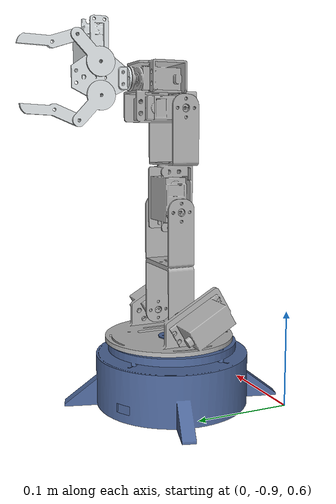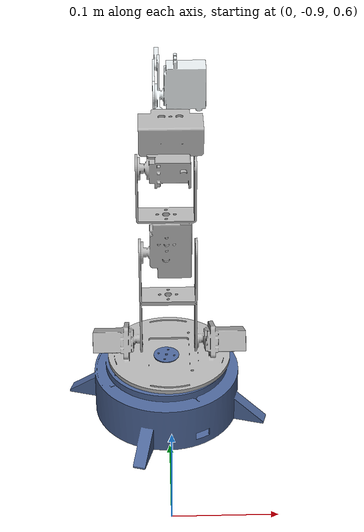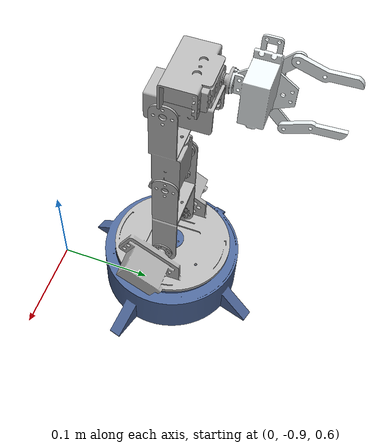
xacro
<?xml version="1.0" ?>
<!-- |    This document was autogenerated by xacro from /home/nsrie/working/all_ros_ws/camera_ws/src/my_arm_description/urdf/robot_arm.xacro | -->
<!-- |    EDITING THIS FILE BY HAND IS NOT RECOMMENDED                                 | -->

<robot name="fyp_robot" xmlns:xacro="http://www.ros.org/wiki/xacro">
    <xacro:property name="scale" value="0.001" />

    <material name="silver">
        <color rgba="0.7 0.7 0.7 1.0" />
    </material>
    <material name="blue">
        <color rgba="0.3 0.4 0.6 1.0" />
    </material>

    <xacro:include filename="$(find fyp_new_cfg)/urdf/fyp_robot.trans" />
    <xacro:include filename="$(find fyp_new_cfg)/urdf/fyp_robot.gazebo" />
    <xacro:include filename="$(find fyp_new_cfg)/urdf/fyp_robot.urdf" />

</robot>

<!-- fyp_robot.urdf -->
<!-- |    This document was autogenerated by xacro from /home/nsrie/working/all_ros_ws/camera_ws/src/my_arm_description/urdf/robot_arm.xacro | -->
<!-- |    EDITING THIS FILE BY HAND IS NOT RECOMMENDED                                 | -->
<robot name="fyp_robot">
   <link name="world" />
    <joint name="base_fixed_joint" type="fixed">
        <parent link="world" />
        <child link="base_link" />
        <origin rpy="0 0 0" xyz="0 -0.768 0.629" />
    </joint>

    <link name="base_link">
        <inertial>
            <origin rpy="0 0 0" xyz="-0.0019226671084236508 0.03127199959893212 0.003074002176362074" />
            <mass value="0.1" />
            <inertia ixx="0.0135" ixy="0.0" ixz="0.0" iyy="0.0135" iyz="0.0" izz="0.05" />
        </inertial>
        <visual>
            <origin rpy="1.57 0 0" xyz="0 0 0" />
            <geometry>
                <mesh filename="package://my_arm_description/meshes/base_link.stl" scale="${scale} ${scale} ${scale}" />
            </geometry>
            <material name="blue" />
        </visual>
        <collision>
            <origin rpy="1.57 0 0" xyz="0 0 0" />
            <geometry>
                <mesh filename="package://my_arm_description/meshes/base_link.stl" scale="${scale} ${scale} ${scale}" />
            </geometry>
        </collision>
    </link>
    <link name="Link1_1">
        <inertial>
            <origin rpy="0 0 0" xyz="-4.991869489348773e-06 0.01780900870871517 0.005735315172792203" />
            <mass value="0.08948947756149551" />
            <inertia ixx="0.000574" ixy="-1.2e-05" ixz="-2e-05" iyy="0.002344" iyz="-7.9e-05" izz="0.002106" />
        </inertial>
        <visual>
            <origin rpy="0 0 0" xyz="0.002688 -0.06295 -0.001684" />
            <geometry>
                <mesh filename="package://my_arm_description/meshes/Link1_1.stl" scale="${scale} ${scale} ${scale}" />
            </geometry>
            <material name="silver" />
        </visual>
        <collision>
            <origin rpy="0 0 0" xyz="0.002688 -0.06295 -0.001684" />
            <geometry>
                <mesh filename="package://my_arm_description/meshes/Link1_1.stl" scale="${scale} ${scale} ${scale}" />
            </geometry>
        </collision>
    </link>
    <link name="Link2_1">
        <inertial>
            <origin rpy="0 0 0" xyz="0.025500212363618904 0.050000197846483144 2.9486110807164234e-07" />
            <mass value="0.01268747558623512" />
            <inertia ixx="0.000111" ixy="0.0" ixz="-0.0" iyy="7.8e-05" iyz="-0.0" izz="0.000176" />
        </inertial>
        <visual>
            <origin rpy="0 0 0" xyz="0.028738 -0.084331 -0.001684" />
            <geometry>
                <mesh filename="package://my_arm_description/meshes/Link2_1.stl" scale="${scale} ${scale} ${scale}" />
            </geometry>
            <material name="silver" />
        </visual>
        <collision>
            <origin rpy="0 0 0" xyz="0.028738 -0.084331 -0.001684" />
            <geometry>
                <mesh filename="package://my_arm_description/meshes/Link2_1.stl" scale="${scale} ${scale} ${scale}" />
            </geometry>
        </collision>
    </link>
    <link name="Link3_1">
        <inertial>
            <origin rpy="0 0 0" xyz="0.027076002474259824 0.019409440802769573 0.002368883434935072" />
            <mass value="0.03877413615001566" />
            <inertia ixx="0.00025" ixy="1e-05" ixz="0.0" iyy="0.000103" iyz="-7e-06" izz="0.00031" />
        </inertial>
        <visual>
            <origin rpy="0 0 0" xyz="0.028738 -0.184331 -0.001684" />
            <geometry>
                <mesh filename="package://my_arm_description/meshes/Link3_1.stl" scale="${scale} ${scale} ${scale}" />
            </geometry>
            <material name="silver" />
        </visual>
        <collision>
            <origin rpy="0 0 0" xyz="0.028738 -0.184331 -0.001684" />
            <geometry>
                <mesh filename="package://my_arm_description/meshes/Link3_1.stl" scale="${scale} ${scale} ${scale}" />
            </geometry>
        </collision>
    </link>
    <link name="Link4_1">
        <inertial>
            <origin rpy="0 0 0" xyz="0.02792782389157162 0.0015768795382742895 -0.009656526599892783" />
            <mass value="0.030477625056794005" />
            <inertia ixx="6.9e-05" ixy="-1e-06" ixz="2e-06" iyy="9.7e-05" iyz="0.0" izz="5.9e-05" />
        </inertial>
        <visual>
            <origin rpy="0 0 0" xyz="0.030288 -0.27563 -0.005184" />
            <geometry>
                <mesh filename="package://my_arm_description/meshes/Link4_1.stl" scale="${scale} ${scale} ${scale}" />
            </geometry>
            <material name="silver" />
        </visual>
        <collision>
            <origin rpy="0 0 0" xyz="0.030288 -0.27563 -0.005184" />
            <geometry>
                <mesh filename="package://my_arm_description/meshes/Link4_1.stl" scale="${scale} ${scale} ${scale}" />
            </geometry>
        </collision>
    </link>
    <link name="Link5_1">
        <inertial>
            <origin rpy="0 0 0" xyz="0.02792782389157162 0.0015768795382742895 -0.009656526599892783" />
            <mass value="0.030477625056794005" />
            <inertia ixx="6.9e-05" ixy="-1e-06" ixz="2e-06" iyy="9.7e-05" iyz="0.0" izz="5.9e-05" />
        </inertial>
        <visual>
            <origin rpy="0 0 0" xyz="0.030288 -0.27563 -0.005184" />
            <geometry>
                <mesh filename="package://my_arm_description/meshes/Link4_1.stl" scale="${scale} ${scale} ${scale}" />
            </geometry>
            <material name="silver" />
        </visual>
        <collision>
            <origin rpy="0 0 0" xyz="0.030288 -0.27563 -0.005184" />
            <geometry>
                <mesh filename="package://my_arm_description/meshes/Link4_1.stl" scale="${scale} ${scale} ${scale}" />
            </geometry>
        </collision>
    </link>
    <joint name="joint_1" type="revolute">
        <origin rpy="1.57 0 0" xyz="0 0 0.06" />
        <parent link="base_link" />
        <child link="Link1_1" />
        <axis xyz="0 1 0" />
        <limit effort="5.0" lower="-3.14" upper="3.14" velocity="1.57" />
        <dynamics damping="0.1" friction="0.45" />
    </joint>
    <joint name="joint_2" type="revolute">
        <origin rpy="0 0 0" xyz="-0.02605 0.021381 0.0" />
        <parent link="Link1_1" />
        <child link="Link2_1" />
        <axis xyz="-1 0 0" />
        <limit effort="5.0" lower="-1.57" upper="1.57" velocity="1.57" />
        <dynamics damping="0.1" friction="0.45" />
    </joint>
    <joint name="joint_3" type="revolute">
        <origin rpy="0 0 0" xyz="0.0 0.1 0.0" />
        <parent link="Link2_1" />
        <child link="Link3_1" />
        <axis xyz="-1 0 0" />
        <limit effort="5.0" lower="-2.2" upper="2.2" velocity="1.57" />
        <dynamics damping="0.1" friction="0.45" />
    </joint>
    <joint name="joint_4" type="revolute">
        <origin rpy="0 0 0" xyz="-0.00155 0.091299 0.0035" />
        <parent link="Link3_1" />
        <child link="Link4_1" />
        <axis xyz="-1 0 0" />
        <limit effort="5.0" lower="-3.14" upper="1.2" velocity="1.57" />
        <dynamics damping="0.1" friction="0.45" />
    </joint>
    <joint name="joint_5_fixed" type="fixed">
        <origin rpy="0 -1.57 0" xyz="0.02 0.025 -0.045" />
        <parent link="Link4_1" />
        <child link="Link5_1" />
    </joint>
    <!-- gripper -->
    <joint name="joint_5" type="revolute">
        <origin rpy="1.57 0 -1.57" xyz="0 0 0" />
        <parent link="Link5_1" />
        <child link="grip_base_link" />
        <axis xyz="0 0 1" />
        <limit effort="5.0" lower="-3.14" upper="3.14" velocity="1.57" />
        <dynamics damping="0.45" friction="0.5" />
    </joint>
    <link name="grip_base_link">
        <inertial>
            <origin rpy="0 0 0" xyz="-0.020531 -0.021072 0.02563" />
            <mass value="0.00367" />
            <inertia ixx="5.4785E-06" ixy="-5.5445E-08" ixz="-8.0352E-09" iyy="7.0866E-06" iyz="-7.7291E-13" izz="9.4579E-06" />
        </inertial>
        <visual>
            <origin rpy="0 0 0" xyz="0 0 0" />
            <geometry>
                <mesh filename="package://my_arm_description/meshes/gripper_meshes/grip_base_link.STL"/>
            </geometry>
            <material name="">
                <color rgba="0.89804 0.92157 0.92941 1" />
            </material>
        </visual>
        <collision>
            <origin rpy="0 0 0" xyz="0 0 0" />
            <geometry>
                <mesh filename="package://my_arm_description/meshes/gripper_meshes/grip_base_link.STL" />
            </geometry>
        </collision>
    </link>
    <link name="hand_link1">
        <inertial>
            <origin rpy="0 0 0" xyz="-0.00523492547000686 0.00492501926066897 -0.00100000000000003" />
            <mass value="0.000142065726893586" />
            <inertia ixx="1.22964066308207E-07" ixy="8.46203793647206E-08" ixz="3.23650142493458E-27" iyy="1.33298297071557E-07" iyz="-7.87479068447034E-25" izz="2.55315258533807E-07" />
        </inertial>
        <visual>
            <origin rpy="0 0 0" xyz="0 0 0" />
            <geometry>
                <mesh filename="package://my_arm_description/meshes/gripper_meshes/hand_link1.STL" />
            </geometry>
            <material name="">
                <color rgba="0.898039215686275 0.92156862745098 0.929411764705882 1" />
            </material>
        </visual>
        <collision>
            <origin rpy="0 0 0" xyz="0 0 0" />
            <geometry>
                <mesh filename="package://my_arm_description/meshes/gripper_meshes/hand_link1.STL" />
            </geometry>
        </collision>
    </link>
    <joint name="hand_joint1" type="revolute">
        <origin rpy="1.5708 0 3.1416" xyz="0.015 0.00535 0.02625" />
        <parent link="grip_base_link" />
        <child link="hand_link1" />
        <axis xyz="0 0 1" />
        <limit effort="5.0" lower="-0.5" upper="0.5" velocity="1.57" />
        <mimic joint="gripper_joint" multiplier="1" />
        <dynamics damping="0.45" friction="0.5" />
        <implicitSpringDamper>True</implicitSpringDamper>
    </joint>

    <link name="hand_grip1">
        <inertial>
            <origin rpy="0 0 0" xyz="0.00594567238082101 0.0203210851839823 -0.00399999969237515" />
            <mass value="0.000187045062582082" />
            <inertia ixx="4.0782602368236E-07" ixy="-7.95845983485053E-08" ixz="-1.31395403259131E-14" iyy="3.53476941089525E-08" iyz="-2.03499073074993E-14" izz="4.38185846898205E-07" />
        </inertial>
        <visual>
            <origin rpy="0 0 0" xyz="0 0 0" />
            <geometry>
                <mesh filename="package://my_arm_description/meshes/gripper_meshes/hand_grip1.STL" />
            </geometry>
            <material name="">
                <color rgba="0.898039215686275 0.92156862745098 0.929411764705882 1" />
            </material>
        </visual>
        <collision>
            <origin rpy="0 0 0" xyz="0.004 0 0" />
            <geometry>
                <mesh filename="package://my_arm_description/meshes/gripper_meshes/hand_grip1.STL" />
            </geometry>
        </collision>
    </link>
    <joint name="hand_grip_joint1" type="revolute">
        <origin rpy="0 0 0" xyz="-0.021122 0.019871 0" />
        <parent link="hand_link1" />
        <child link="hand_grip1" />
        <axis xyz="0 0 1" />
        <limit effort="5.0" lower="-0.5" upper="0.5" velocity="1.57" />
        <mimic joint="gripper_joint" multiplier="-1" />
        <dynamics damping="0.45" friction="0.5" />
        <implicitSpringDamper>True</implicitSpringDamper>
    </joint>

    <link name="hand_link2">
        <inertial>
            <origin rpy="0 0 0" xyz="0.00521580581542747 0.00494526329837284 -0.00100000000000003" />
            <mass value="0.000142065726893586" />
            <inertia ixx="1.2361988419095E-07" ixy="-8.46578754757815E-08" ixz="6.873768146667E-25" iyy="1.32642479188815E-07" iyz="7.7917326290555E-25" izz="2.55315258533807E-07" />
        </inertial>
        <visual>
            <origin rpy="0 0 0" xyz="0 0 0" />
            <geometry>
                <mesh filename="package://my_arm_description/meshes/gripper_meshes/hand_link2.STL" />
            </geometry>
            <material name="">
                <color rgba="0.898039215686275 0.92156862745098 0.929411764705882 1" />
            </material>
        </visual>
        <collision>
            <origin rpy="0 0 0" xyz="0 0 0" />
            <geometry>
                <mesh filename="package://my_arm_description/meshes/gripper_meshes/hand_link2.STL" />
            </geometry>
        </collision>
    </link>
   <joint name="gripper_joint" type="revolute">
        <origin rpy="1.5708 0 3.1416" xyz="-0.013 0.00535 0.02625" />
        <parent link="grip_base_link" />
        <child link="hand_link2" />
        <axis xyz="0 0 -1" />
        <limit effort="5.0" lower="-0.5" upper="0.5" velocity="1.57" />
        <dynamics damping="0.45" friction="0.5" />
        <implicitSpringDamper>True</implicitSpringDamper>
    </joint>
    <link name="hand_grip2">
        <inertial>
            <origin rpy="0 0 0" xyz="-0.00445045993813949 0.020700021082788 -0.00400000030762493" />
            <mass value="0.000187045056346137" />
            <inertia ixx="4.17408949625888E-07" ixy="5.16953875644496E-08" ixz="-1.17218822252589E-14" iyy="2.57647082341614E-08" iyz="2.12711331247855E-14" izz="4.38185787066717E-07" />
        </inertial>
        <visual>
            <origin rpy="0 0 0" xyz="0 0 0" />
            <geometry>
                <mesh filename="package://my_arm_description/meshes/gripper_meshes/hand_grip2.STL" />
            </geometry>
            <material name="">
                <color rgba="0.898039215686275 0.92156862745098 0.929411764705882 1" />
            </material>
        </visual>
        <collision>
            <origin rpy="0 0 0" xyz="-0.004 0 0" />
            <geometry>
                <mesh filename="package://my_arm_description/meshes/gripper_meshes/hand_grip2.STL"/>
            </geometry>
        </collision>
    </link>
    <joint name="hand_grip_joint2" type="revolute">
        <origin rpy="0 0 0" xyz="0.021045 0.019953 0" />
        <parent link="hand_link2" />
        <child link="hand_grip2" />
        <axis xyz="0 0 -1" />
        <limit effort="5.0" lower="-0.4" upper="0.4" velocity="1.57" />
        <mimic joint="gripper_joint" multiplier="-1" />
        <dynamics damping="0.45" friction="0.5" />
        <implicitSpringDamper>True</implicitSpringDamper>
    </joint>

    <!-- TCP -->
    <link name="tool_link" />
    <joint name="tool_joint" type="fixed">
        <origin rpy="0 0 0" xyz="0 0 0.1" />
        <parent link="grip_base_link" />
        <child link="tool_link" />
        <dynamics damping="0.45" friction="0.5" />
    </joint>
</robot>
